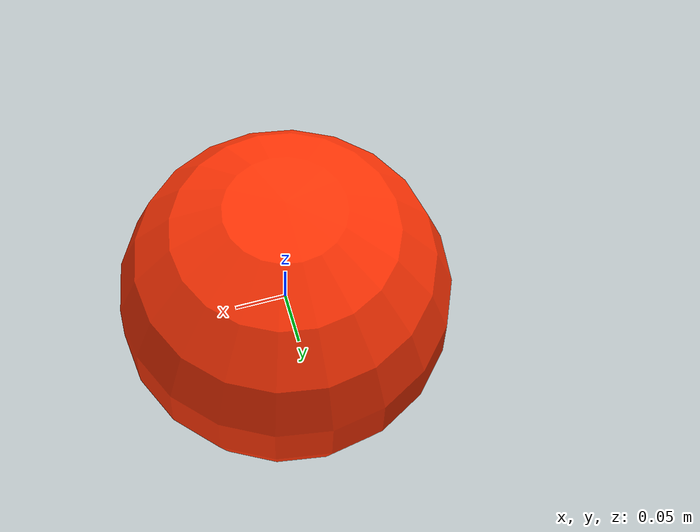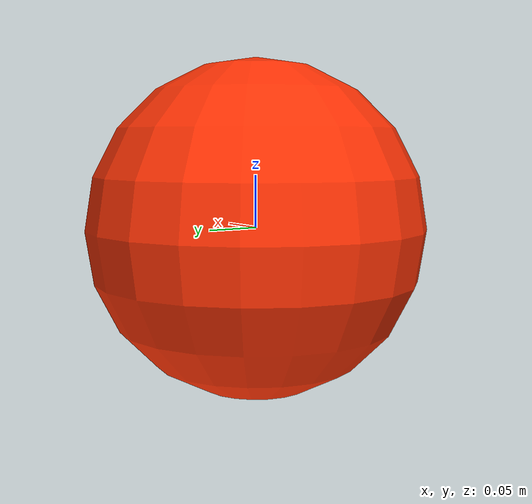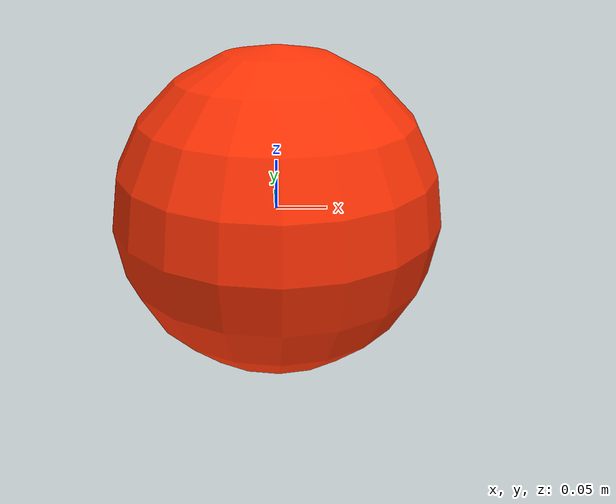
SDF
<?xml version='1.0' encoding='utf-8'?>
<sdf version="1.9">
  <model name="projectile_ball" canonical_link="ball_link">
    <link name="ball_link">
      <inertial>
        <mass>0.15</mass>
        <inertia>
          <ixx>0.001536</ixx>
          <iyy>0.001536</iyy>
          <izz>0.001536</izz>
          <ixy>0</ixy>
          <ixz>0</ixz>
          <iyz>0</iyz>
        </inertia>
      </inertial>
      <visual name="ball_visual">
        <geometry>
          <sphere>
            <radius>0.16</radius>
          </sphere>
        </geometry>
        <material>
          <ambient>1 0.15 0.02 1</ambient>
          <diffuse>1 0.20 0.02 1</diffuse>
          <emissive>0.8 0.08 0.01 1</emissive>
        </material>
      </visual>
      <collision name="ball_collision">
        <geometry>
          <sphere>
            <radius>0.16</radius>
          </sphere>
        </geometry>
        <surface>
          <friction>
            <ode>
              <mu>0.25</mu>
              <mu2>0.25</mu2>
            </ode>
          </friction>
          <bounce>
            <restitution_coefficient>0.30</restitution_coefficient>
            <threshold>0.1</threshold>
          </bounce>
        </surface>
      </collision>
    </link>
  </model>
</sdf>
